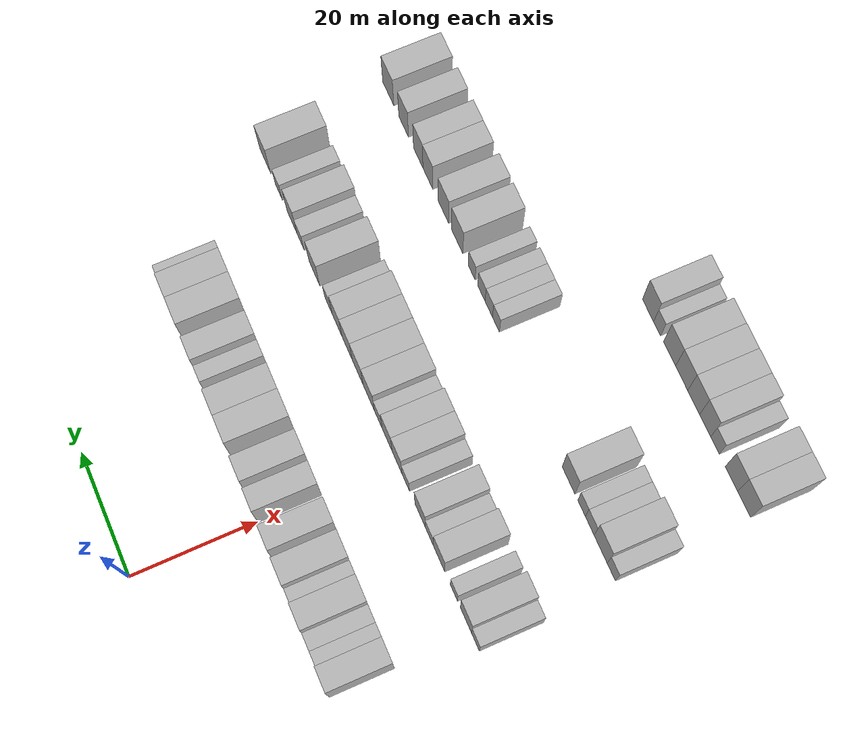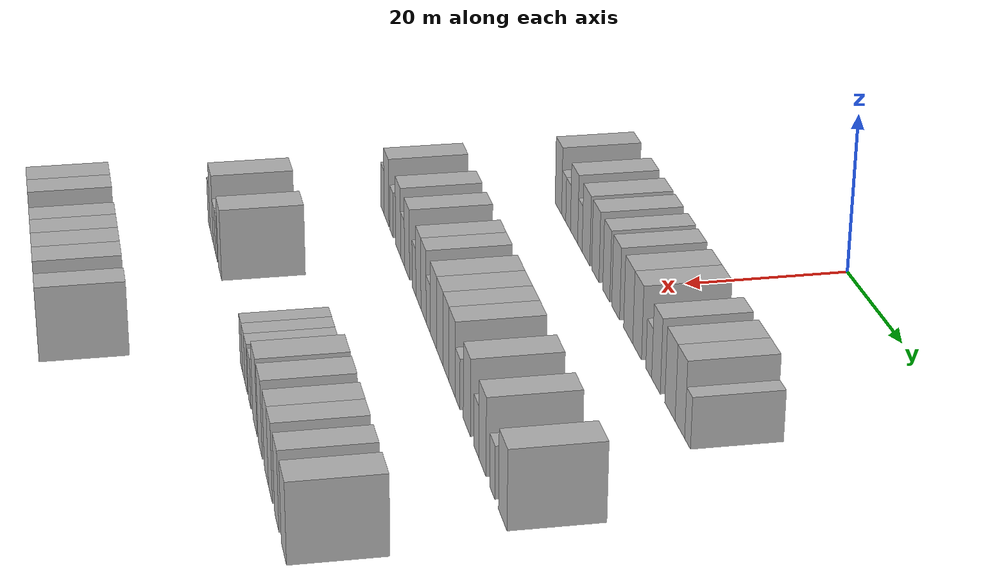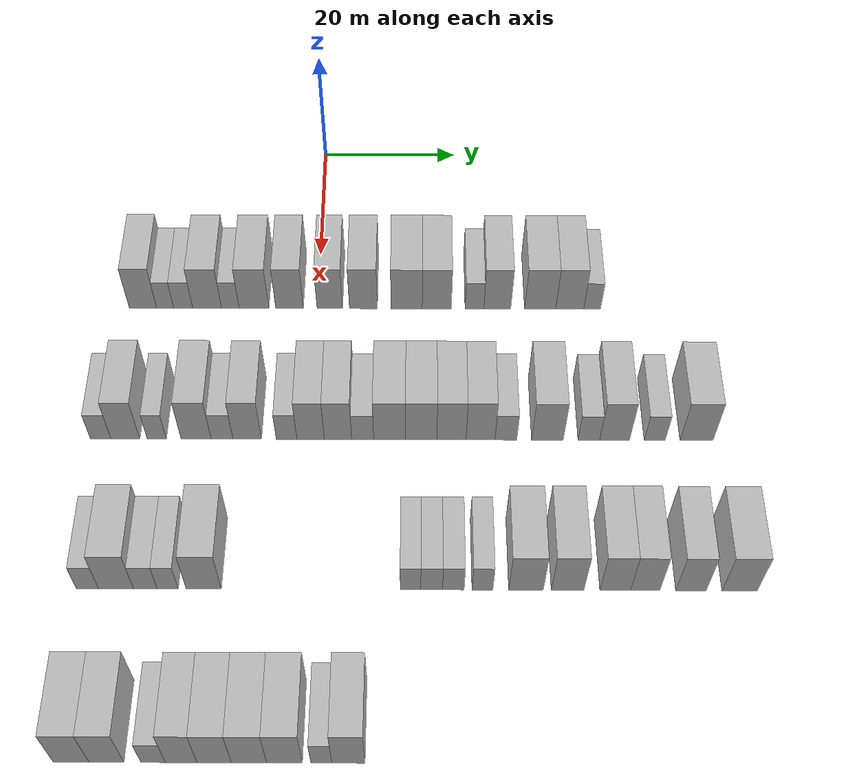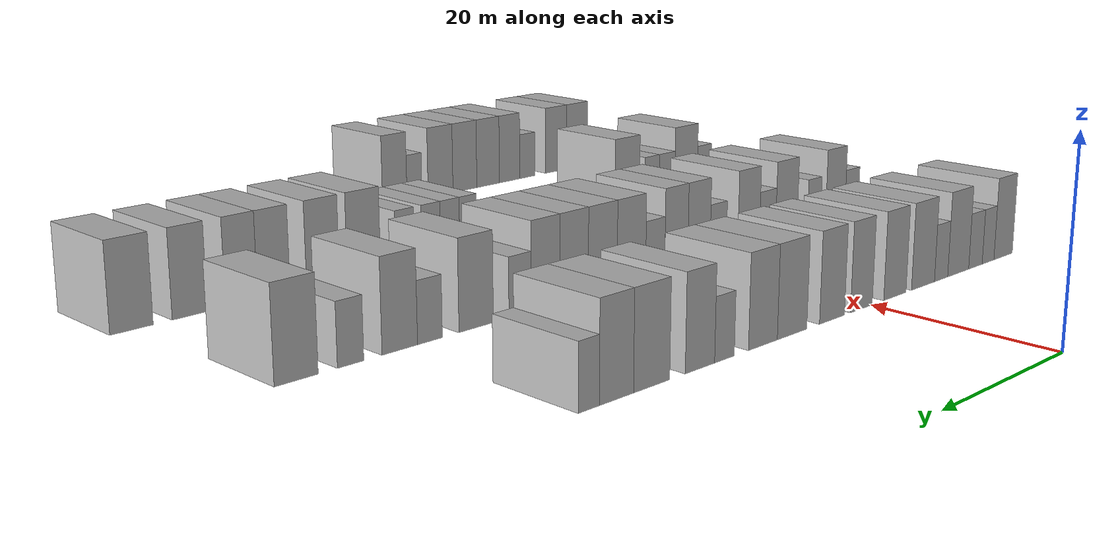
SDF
<sdf version="1.6">
 <world name="default">
  <model name="building_86">
   <static>1</static>
   <pose>25.0000 -25.2728 0 0.000000 0.000000 0.000000</pose>
   <link name="link">
    <pose>0 0 4.50 0 0 0</pose>
    <collision name="collision"><geometry><box><size>10.0000 3.9410 9.0000</size></box></geometry></collision>
    <visual name="visual">
     <cast_shadows>0</cast_shadows>
     <geometry><box><size>10.0000 3.9410 9.0000</size></box></geometry>
     <material>
      <script>
       <uri>model://HANNAS_wall/materials/scripts</uri>
       <uri>model://HANNAS_wall/materials/textures</uri>
       <name>vrc/HANNAS_wall</name>
      </script>
     </material>
    </visual>
   </link>
  </model>
  <model name="building_87">
   <static>1</static>
   <pose>25.0000 -22.0750 0 0.000000 0.000000 0.000000</pose>
   <link name="link">
    <pose>0 0 3.00 0 0 0</pose>
    <collision name="collision"><geometry><box><size>10.0000 2.4546 6.0000</size></box></geometry></collision>
    <visual name="visual">
     <cast_shadows>0</cast_shadows>
     <geometry><box><size>10.0000 2.4546 6.0000</size></box></geometry>
     <material>
      <script>
       <uri>model://HANNAS_wall/materials/scripts</uri>
       <uri>model://HANNAS_wall/materials/textures</uri>
       <name>vrc/HANNAS_wall</name>
      </script>
     </material>
    </visual>
   </link>
  </model>
  <model name="building_88">
   <static>1</static>
   <pose>25.0000 -19.4703 0 0.000000 0.000000 0.000000</pose>
   <link name="link">
    <pose>0 0 3.00 0 0 0</pose>
    <collision name="collision"><geometry><box><size>10.0000 2.7548 6.0000</size></box></geometry></collision>
    <visual name="visual">
     <cast_shadows>0</cast_shadows>
     <geometry><box><size>10.0000 2.7548 6.0000</size></box></geometry>
     <material>
      <script>
       <uri>model://HANNAS_wall/materials/scripts</uri>
       <uri>model://HANNAS_wall/materials/textures</uri>
       <name>vrc/HANNAS_wall</name>
      </script>
     </material>
    </visual>
   </link>
  </model>
  <model name="building_89">
   <static>1</static>
   <pose>25.0000 -16.0093 0 0.000000 0.000000 0.000000</pose>
   <link name="link">
    <pose>0 0 4.50 0 0 0</pose>
    <collision name="collision"><geometry><box><size>10.0000 4.1673 9.0000</size></box></geometry></collision>
    <visual name="visual">
     <cast_shadows>0</cast_shadows>
     <geometry><box><size>10.0000 4.1673 9.0000</size></box></geometry>
     <material>
      <script>
       <uri>model://HANNAS_wall/materials/scripts</uri>
       <uri>model://HANNAS_wall/materials/textures</uri>
       <name>vrc/HANNAS_wall</name>
      </script>
     </material>
    </visual>
   </link>
  </model>
  <model name="building_90">
   <static>1</static>
   <pose>25.0000 -12.6539 0 0.000000 0.000000 0.000000</pose>
   <link name="link">
    <pose>0 0 3.00 0 0 0</pose>
    <collision name="collision"><geometry><box><size>10.0000 2.5434 6.0000</size></box></geometry></collision>
    <visual name="visual">
     <cast_shadows>0</cast_shadows>
     <geometry><box><size>10.0000 2.5434 6.0000</size></box></geometry>
     <material>
      <script>
       <uri>model://HANNAS_wall/materials/scripts</uri>
       <uri>model://HANNAS_wall/materials/textures</uri>
       <name>vrc/HANNAS_wall</name>
      </script>
     </material>
    </visual>
   </link>
  </model>
  <model name="building_91">
   <static>1</static>
   <pose>25.0000 -9.2361 0 0.000000 0.000000 0.000000</pose>
   <link name="link">
    <pose>0 0 4.50 0 0 0</pose>
    <collision name="collision"><geometry><box><size>10.0000 4.2923 9.0000</size></box></geometry></collision>
    <visual name="visual">
     <cast_shadows>0</cast_shadows>
     <geometry><box><size>10.0000 4.2923 9.0000</size></box></geometry>
     <material>
      <script>
       <uri>model://HANNAS_wall/materials/scripts</uri>
       <uri>model://HANNAS_wall/materials/textures</uri>
       <name>vrc/HANNAS_wall</name>
      </script>
     </material>
    </visual>
   </link>
  </model>
  <model name="building_92">
   <static>1</static>
   <pose>25.0000 -4.1065 0 0.000000 0.000000 0.000000</pose>
   <link name="link">
    <pose>0 0 4.50 0 0 0</pose>
    <collision name="collision"><geometry><box><size>10.0000 3.9671 9.0000</size></box></geometry></collision>
    <visual name="visual">
     <cast_shadows>0</cast_shadows>
     <geometry><box><size>10.0000 3.9671 9.0000</size></box></geometry>
     <material>
      <script>
       <uri>model://HANNAS_wall/materials/scripts</uri>
       <uri>model://HANNAS_wall/materials/textures</uri>
       <name>vrc/HANNAS_wall</name>
      </script>
     </material>
    </visual>
   </link>
  </model>
  <model name="building_93">
   <static>1</static>
   <pose>25.0000 1.7117 0 0.000000 0.000000 0.000000</pose>
   <link name="link">
    <pose>0 0 4.50 0 0 0</pose>
    <collision name="collision"><geometry><box><size>10.0000 3.6692 9.0000</size></box></geometry></collision>
    <visual name="visual">
     <cast_shadows>0</cast_shadows>
     <geometry><box><size>10.0000 3.6692 9.0000</size></box></geometry>
     <material>
      <script>
       <uri>model://HANNAS_wall/materials/scripts</uri>
       <uri>model://HANNAS_wall/materials/textures</uri>
       <name>vrc/HANNAS_wall</name>
      </script>
     </material>
    </visual>
   </link>
  </model>
  <model name="building_94">
   <static>1</static>
   <pose>25.0000 6.5533 0 0.000000 0.000000 0.000000</pose>
   <link name="link">
    <pose>0 0 4.50 0 0 0</pose>
    <collision name="collision"><geometry><box><size>10.0000 4.0141 9.0000</size></box></geometry></collision>
    <visual name="visual">
     <cast_shadows>0</cast_shadows>
     <geometry><box><size>10.0000 4.0141 9.0000</size></box></geometry>
     <material>
      <script>
       <uri>model://HANNAS_wall/materials/scripts</uri>
       <uri>model://HANNAS_wall/materials/textures</uri>
       <name>vrc/HANNAS_wall</name>
      </script>
     </material>
    </visual>
   </link>
  </model>
  <model name="building_95">
   <static>1</static>
   <pose>25.0000 12.7944 0 0.000000 0.000000 0.000000</pose>
   <link name="link">
    <pose>0 0 4.50 0 0 0</pose>
    <collision name="collision"><geometry><box><size>10.0000 4.4681 9.0000</size></box></geometry></collision>
    <visual name="visual">
     <cast_shadows>0</cast_shadows>
     <geometry><box><size>10.0000 4.4681 9.0000</size></box></geometry>
     <material>
      <script>
       <uri>model://HANNAS_wall/materials/scripts</uri>
       <uri>model://HANNAS_wall/materials/textures</uri>
       <name>vrc/HANNAS_wall</name>
      </script>
     </material>
    </visual>
   </link>
  </model>
  <model name="building_96">
   <static>1</static>
   <pose>25.0000 17.1203 0 0.000000 0.000000 0.000000</pose>
   <link name="link">
    <pose>0 0 4.50 0 0 0</pose>
    <collision name="collision"><geometry><box><size>10.0000 4.1838 9.0000</size></box></geometry></collision>
    <visual name="visual">
     <cast_shadows>0</cast_shadows>
     <geometry><box><size>10.0000 4.1838 9.0000</size></box></geometry>
     <material>
      <script>
       <uri>model://HANNAS_wall/materials/scripts</uri>
       <uri>model://HANNAS_wall/materials/textures</uri>
       <name>vrc/HANNAS_wall</name>
      </script>
     </material>
    </visual>
   </link>
  </model>
  <model name="building_97">
   <static>1</static>
   <pose>25.0000 22.5621 0 0.000000 0.000000 0.000000</pose>
   <link name="link">
    <pose>0 0 3.00 0 0 0</pose>
    <collision name="collision"><geometry><box><size>10.0000 2.6999 6.0000</size></box></geometry></collision>
    <visual name="visual">
     <cast_shadows>0</cast_shadows>
     <geometry><box><size>10.0000 2.6999 6.0000</size></box></geometry>
     <material>
      <script>
       <uri>model://HANNAS_wall/materials/scripts</uri>
       <uri>model://HANNAS_wall/materials/textures</uri>
       <name>vrc/HANNAS_wall</name>
      </script>
     </material>
    </visual>
   </link>
  </model>
  <model name="building_98">
   <static>1</static>
   <pose>25.0000 25.8554 0 0.000000 0.000000 0.000000</pose>
   <link name="link">
    <pose>0 0 4.50 0 0 0</pose>
    <collision name="collision"><geometry><box><size>10.0000 3.8867 9.0000</size></box></geometry></collision>
    <visual name="visual">
     <cast_shadows>0</cast_shadows>
     <geometry><box><size>10.0000 3.8867 9.0000</size></box></geometry>
     <material>
      <script>
       <uri>model://HANNAS_wall/materials/scripts</uri>
       <uri>model://HANNAS_wall/materials/textures</uri>
       <name>vrc/HANNAS_wall</name>
      </script>
     </material>
    </visual>
   </link>
  </model>
  <model name="building_99">
   <static>1</static>
   <pose>25.0000 32.0392 0 0.000000 0.000000 0.000000</pose>
   <link name="link">
    <pose>0 0 4.50 0 0 0</pose>
    <collision name="collision"><geometry><box><size>10.0000 4.4809 9.0000</size></box></geometry></collision>
    <visual name="visual">
     <cast_shadows>0</cast_shadows>
     <geometry><box><size>10.0000 4.4809 9.0000</size></box></geometry>
     <material>
      <script>
       <uri>model://HANNAS_wall/materials/scripts</uri>
       <uri>model://HANNAS_wall/materials/textures</uri>
       <name>vrc/HANNAS_wall</name>
      </script>
     </material>
    </visual>
   </link>
  </model>
  <model name="building_100">
   <static>1</static>
   <pose>25.0000 36.2983 0 0.000000 0.000000 0.000000</pose>
   <link name="link">
    <pose>0 0 4.50 0 0 0</pose>
    <collision name="collision"><geometry><box><size>10.0000 4.0374 9.0000</size></box></geometry></collision>
    <visual name="visual">
     <cast_shadows>0</cast_shadows>
     <geometry><box><size>10.0000 4.0374 9.0000</size></box></geometry>
     <material>
      <script>
       <uri>model://HANNAS_wall/materials/scripts</uri>
       <uri>model://HANNAS_wall/materials/textures</uri>
       <name>vrc/HANNAS_wall</name>
      </script>
     </material>
    </visual>
   </link>
  </model>
  <model name="building_101">
   <static>1</static>
   <pose>25.0000 39.5239 0 0.000000 0.000000 0.000000</pose>
   <link name="link">
    <pose>0 0 3.00 0 0 0</pose>
    <collision name="collision"><geometry><box><size>10.0000 2.4137 6.0000</size></box></geometry></collision>
    <visual name="visual">
     <cast_shadows>0</cast_shadows>
     <geometry><box><size>10.0000 2.4137 6.0000</size></box></geometry>
     <material>
      <script>
       <uri>model://HANNAS_wall/materials/scripts</uri>
       <uri>model://HANNAS_wall/materials/textures</uri>
       <name>vrc/HANNAS_wall</name>
      </script>
     </material>
    </visual>
   </link>
  </model>
  <model name="building_266">
   <static>1</static>
   <pose>47.0000 -28.4433 0 0.000000 0.000000 0.000000</pose>
   <link name="link">
    <pose>0 0 3.00 0 0 0</pose>
    <collision name="collision"><geometry><box><size>10.0000 2.7791 6.0000</size></box></geometry></collision>
    <visual name="visual">
     <cast_shadows>0</cast_shadows>
     <geometry><box><size>10.0000 2.7791 6.0000</size></box></geometry>
     <material>
      <script>
       <uri>model://HANNAS_wall/materials/scripts</uri>
       <uri>model://HANNAS_wall/materials/textures</uri>
       <name>vrc/HANNAS_wall</name>
      </script>
     </material>
    </visual>
   </link>
  </model>
  <model name="building_267">
   <static>1</static>
   <pose>47.0000 -25.0952 0 0.000000 0.000000 0.000000</pose>
   <link name="link">
    <pose>0 0 4.50 0 0 0</pose>
    <collision name="collision"><geometry><box><size>10.0000 3.9172 9.0000</size></box></geometry></collision>
    <visual name="visual">
     <cast_shadows>0</cast_shadows>
     <geometry><box><size>10.0000 3.9172 9.0000</size></box></geometry>
     <material>
      <script>
       <uri>model://HANNAS_wall/materials/scripts</uri>
       <uri>model://HANNAS_wall/materials/textures</uri>
       <name>vrc/HANNAS_wall</name>
      </script>
     </material>
    </visual>
   </link>
  </model>
  <model name="building_268">
   <static>1</static>
   <pose>47.0000 -20.8453 0 0.000000 0.000000 0.000000</pose>
   <link name="link">
    <pose>0 0 3.00 0 0 0</pose>
    <collision name="collision"><geometry><box><size>10.0000 2.5826 6.0000</size></box></geometry></collision>
    <visual name="visual">
     <cast_shadows>0</cast_shadows>
     <geometry><box><size>10.0000 2.5826 6.0000</size></box></geometry>
     <material>
      <script>
       <uri>model://HANNAS_wall/materials/scripts</uri>
       <uri>model://HANNAS_wall/materials/textures</uri>
       <name>vrc/HANNAS_wall</name>
      </script>
     </material>
    </visual>
   </link>
  </model>
  <model name="building_269">
   <static>1</static>
   <pose>47.0000 -15.5282 0 0.000000 0.000000 0.000000</pose>
   <link name="link">
    <pose>0 0 4.50 0 0 0</pose>
    <collision name="collision"><geometry><box><size>10.0000 4.0515 9.0000</size></box></geometry></collision>
    <visual name="visual">
     <cast_shadows>0</cast_shadows>
     <geometry><box><size>10.0000 4.0515 9.0000</size></box></geometry>
     <material>
      <script>
       <uri>model://HANNAS_wall/materials/scripts</uri>
       <uri>model://HANNAS_wall/materials/textures</uri>
       <name>vrc/HANNAS_wall</name>
      </script>
     </material>
    </visual>
   </link>
  </model>
  <model name="building_270">
   <static>1</static>
   <pose>47.0000 -12.0247 0 0.000000 0.000000 0.000000</pose>
   <link name="link">
    <pose>0 0 3.00 0 0 0</pose>
    <collision name="collision"><geometry><box><size>10.0000 2.9556 6.0000</size></box></geometry></collision>
    <visual name="visual">
     <cast_shadows>0</cast_shadows>
     <geometry><box><size>10.0000 2.9556 6.0000</size></box></geometry>
     <material>
      <script>
       <uri>model://HANNAS_wall/materials/scripts</uri>
       <uri>model://HANNAS_wall/materials/textures</uri>
       <name>vrc/HANNAS_wall</name>
      </script>
     </material>
    </visual>
   </link>
  </model>
  <model name="building_271">
   <static>1</static>
   <pose>47.0000 -8.6190 0 0.000000 0.000000 0.000000</pose>
   <link name="link">
    <pose>0 0 4.50 0 0 0</pose>
    <collision name="collision"><geometry><box><size>10.0000 3.8558 9.0000</size></box></geometry></collision>
    <visual name="visual">
     <cast_shadows>0</cast_shadows>
     <geometry><box><size>10.0000 3.8558 9.0000</size></box></geometry>
     <material>
      <script>
       <uri>model://HANNAS_wall/materials/scripts</uri>
       <uri>model://HANNAS_wall/materials/textures</uri>
       <name>vrc/HANNAS_wall</name>
      </script>
     </material>
    </visual>
   </link>
  </model>
  <model name="building_272">
   <static>1</static>
   <pose>47.0000 -3.2991 0 0.000000 0.000000 0.000000</pose>
   <link name="link">
    <pose>0 0 3.00 0 0 0</pose>
    <collision name="collision"><geometry><box><size>10.0000 2.7840 6.0000</size></box></geometry></collision>
    <visual name="visual">
     <cast_shadows>0</cast_shadows>
     <geometry><box><size>10.0000 2.7840 6.0000</size></box></geometry>
     <material>
      <script>
       <uri>model://HANNAS_wall/materials/scripts</uri>
       <uri>model://HANNAS_wall/materials/textures</uri>
       <name>vrc/HANNAS_wall</name>
      </script>
     </material>
    </visual>
   </link>
  </model>
  <model name="building_273">
   <static>1</static>
   <pose>47.0000 -0.0549 0 0.000000 0.000000 0.000000</pose>
   <link name="link">
    <pose>0 0 4.50 0 0 0</pose>
    <collision name="collision"><geometry><box><size>10.0000 3.7044 9.0000</size></box></geometry></collision>
    <visual name="visual">
     <cast_shadows>0</cast_shadows>
     <geometry><box><size>10.0000 3.7044 9.0000</size></box></geometry>
     <material>
      <script>
       <uri>model://HANNAS_wall/materials/scripts</uri>
       <uri>model://HANNAS_wall/materials/textures</uri>
       <name>vrc/HANNAS_wall</name>
      </script>
     </material>
    </visual>
   </link>
  </model>
  <model name="building_274">
   <static>1</static>
   <pose>47.0000 3.6464 0 0.000000 0.000000 0.000000</pose>
   <link name="link">
    <pose>0 0 4.50 0 0 0</pose>
    <collision name="collision"><geometry><box><size>10.0000 3.6980 9.0000</size></box></geometry></collision>
    <visual name="visual">
     <cast_shadows>0</cast_shadows>
     <geometry><box><size>10.0000 3.6980 9.0000</size></box></geometry>
     <material>
      <script>
       <uri>model://HANNAS_wall/materials/scripts</uri>
       <uri>model://HANNAS_wall/materials/textures</uri>
       <name>vrc/HANNAS_wall</name>
      </script>
     </material>
    </visual>
   </link>
  </model>
  <model name="building_275">
   <static>1</static>
   <pose>47.0000 6.9834 0 0.000000 0.000000 0.000000</pose>
   <link name="link">
    <pose>0 0 3.00 0 0 0</pose>
    <collision name="collision"><geometry><box><size>10.0000 2.9760 6.0000</size></box></geometry></collision>
    <visual name="visual">
     <cast_shadows>0</cast_shadows>
     <geometry><box><size>10.0000 2.9760 6.0000</size></box></geometry>
     <material>
      <script>
       <uri>model://HANNAS_wall/materials/scripts</uri>
       <uri>model://HANNAS_wall/materials/textures</uri>
       <name>vrc/HANNAS_wall</name>
      </script>
     </material>
    </visual>
   </link>
  </model>
  <model name="building_276">
   <static>1</static>
   <pose>47.0000 10.6266 0 0.000000 0.000000 0.000000</pose>
   <link name="link">
    <pose>0 0 4.50 0 0 0</pose>
    <collision name="collision"><geometry><box><size>10.0000 4.3105 9.0000</size></box></geometry></collision>
    <visual name="visual">
     <cast_shadows>0</cast_shadows>
     <geometry><box><size>10.0000 4.3105 9.0000</size></box></geometry>
     <material>
      <script>
       <uri>model://HANNAS_wall/materials/scripts</uri>
       <uri>model://HANNAS_wall/materials/textures</uri>
       <name>vrc/HANNAS_wall</name>
      </script>
     </material>
    </visual>
   </link>
  </model>
  <model name="building_277">
   <static>1</static>
   <pose>47.0000 14.8785 0 0.000000 0.000000 0.000000</pose>
   <link name="link">
    <pose>0 0 4.50 0 0 0</pose>
    <collision name="collision"><geometry><box><size>10.0000 4.1932 9.0000</size></box></geometry></collision>
    <visual name="visual">
     <cast_shadows>0</cast_shadows>
     <geometry><box><size>10.0000 4.1932 9.0000</size></box></geometry>
     <material>
      <script>
       <uri>model://HANNAS_wall/materials/scripts</uri>
       <uri>model://HANNAS_wall/materials/textures</uri>
       <name>vrc/HANNAS_wall</name>
      </script>
     </material>
    </visual>
   </link>
  </model>
  <model name="building_278">
   <static>1</static>
   <pose>47.0000 18.9514 0 0.000000 0.000000 0.000000</pose>
   <link name="link">
    <pose>0 0 4.50 0 0 0</pose>
    <collision name="collision"><geometry><box><size>10.0000 3.9525 9.0000</size></box></geometry></collision>
    <visual name="visual">
     <cast_shadows>0</cast_shadows>
     <geometry><box><size>10.0000 3.9525 9.0000</size></box></geometry>
     <material>
      <script>
       <uri>model://HANNAS_wall/materials/scripts</uri>
       <uri>model://HANNAS_wall/materials/textures</uri>
       <name>vrc/HANNAS_wall</name>
      </script>
     </material>
    </visual>
   </link>
  </model>
  <model name="building_279">
   <static>1</static>
   <pose>47.0000 22.8835 0 0.000000 0.000000 0.000000</pose>
   <link name="link">
    <pose>0 0 4.50 0 0 0</pose>
    <collision name="collision"><geometry><box><size>10.0000 3.9116 9.0000</size></box></geometry></collision>
    <visual name="visual">
     <cast_shadows>0</cast_shadows>
     <geometry><box><size>10.0000 3.9116 9.0000</size></box></geometry>
     <material>
      <script>
       <uri>model://HANNAS_wall/materials/scripts</uri>
       <uri>model://HANNAS_wall/materials/textures</uri>
       <name>vrc/HANNAS_wall</name>
      </script>
     </material>
    </visual>
   </link>
  </model>
  <model name="building_280">
   <static>1</static>
   <pose>47.0000 26.3109 0 0.000000 0.000000 0.000000</pose>
   <link name="link">
    <pose>0 0 3.00 0 0 0</pose>
    <collision name="collision"><geometry><box><size>10.0000 2.9432 6.0000</size></box></geometry></collision>
    <visual name="visual">
     <cast_shadows>0</cast_shadows>
     <geometry><box><size>10.0000 2.9432 6.0000</size></box></geometry>
     <material>
      <script>
       <uri>model://HANNAS_wall/materials/scripts</uri>
       <uri>model://HANNAS_wall/materials/textures</uri>
       <name>vrc/HANNAS_wall</name>
      </script>
     </material>
    </visual>
   </link>
  </model>
  <model name="building_281">
   <static>1</static>
   <pose>47.0000 31.9183 0 0.000000 0.000000 0.000000</pose>
   <link name="link">
    <pose>0 0 4.50 0 0 0</pose>
    <collision name="collision"><geometry><box><size>10.0000 4.2717 9.0000</size></box></geometry></collision>
    <visual name="visual">
     <cast_shadows>0</cast_shadows>
     <geometry><box><size>10.0000 4.2717 9.0000</size></box></geometry>
     <material>
      <script>
       <uri>model://HANNAS_wall/materials/scripts</uri>
       <uri>model://HANNAS_wall/materials/textures</uri>
       <name>vrc/HANNAS_wall</name>
      </script>
     </material>
    </visual>
   </link>
  </model>
  <model name="building_282">
   <static>1</static>
   <pose>47.0000 37.5108 0 0.000000 0.000000 0.000000</pose>
   <link name="link">
    <pose>0 0 3.00 0 0 0</pose>
    <collision name="collision"><geometry><box><size>10.0000 2.9134 6.0000</size></box></geometry></collision>
    <visual name="visual">
     <cast_shadows>0</cast_shadows>
     <geometry><box><size>10.0000 2.9134 6.0000</size></box></geometry>
     <material>
      <script>
       <uri>model://HANNAS_wall/materials/scripts</uri>
       <uri>model://HANNAS_wall/materials/textures</uri>
       <name>vrc/HANNAS_wall</name>
      </script>
     </material>
    </visual>
   </link>
  </model>
  <model name="building_283">
   <static>1</static>
   <pose>47.0000 40.9836 0 0.000000 0.000000 0.000000</pose>
   <link name="link">
    <pose>0 0 4.50 0 0 0</pose>
    <collision name="collision"><geometry><box><size>10.0000 4.0322 9.0000</size></box></geometry></collision>
    <visual name="visual">
     <cast_shadows>0</cast_shadows>
     <geometry><box><size>10.0000 4.0322 9.0000</size></box></geometry>
     <material>
      <script>
       <uri>model://HANNAS_wall/materials/scripts</uri>
       <uri>model://HANNAS_wall/materials/textures</uri>
       <name>vrc/HANNAS_wall</name>
      </script>
     </material>
    </visual>
   </link>
  </model>
  <model name="building_284">
   <static>1</static>
   <pose>47.0000 46.4145 0 0.000000 0.000000 0.000000</pose>
   <link name="link">
    <pose>0 0 3.00 0 0 0</pose>
    <collision name="collision"><geometry><box><size>10.0000 2.8296 6.0000</size></box></geometry></collision>
    <visual name="visual">
     <cast_shadows>0</cast_shadows>
     <geometry><box><size>10.0000 2.8296 6.0000</size></box></geometry>
     <material>
      <script>
       <uri>model://HANNAS_wall/materials/scripts</uri>
       <uri>model://HANNAS_wall/materials/textures</uri>
       <name>vrc/HANNAS_wall</name>
      </script>
     </material>
    </visual>
   </link>
  </model>
  <model name="building_285">
   <static>1</static>
   <pose>47.0000 52.0585 0 0.000000 0.000000 0.000000</pose>
   <link name="link">
    <pose>0 0 4.50 0 0 0</pose>
    <collision name="collision"><geometry><box><size>10.0000 4.4586 9.0000</size></box></geometry></collision>
    <visual name="visual">
     <cast_shadows>0</cast_shadows>
     <geometry><box><size>10.0000 4.4586 9.0000</size></box></geometry>
     <material>
      <script>
       <uri>model://HANNAS_wall/materials/scripts</uri>
       <uri>model://HANNAS_wall/materials/textures</uri>
       <name>vrc/HANNAS_wall</name>
      </script>
     </material>
    </visual>
   </link>
  </model>
  <model name="building_457">
   <static>1</static>
   <pose>69.0000 -27.1706 0 0.000000 0.000000 0.000000</pose>
   <link name="link">
    <pose>0 0 3.00 0 0 0</pose>
    <collision name="collision"><geometry><box><size>10.0000 2.7872 6.0000</size></box></geometry></collision>
    <visual name="visual">
     <cast_shadows>0</cast_shadows>
     <geometry><box><size>10.0000 2.7872 6.0000</size></box></geometry>
     <material>
      <script>
       <uri>model://HANNAS_wall/materials/scripts</uri>
       <uri>model://HANNAS_wall/materials/textures</uri>
       <name>vrc/HANNAS_wall</name>
      </script>
     </material>
    </visual>
   </link>
  </model>
  <model name="building_458">
   <static>1</static>
   <pose>69.0000 -23.5649 0 0.000000 0.000000 0.000000</pose>
   <link name="link">
    <pose>0 0 4.50 0 0 0</pose>
    <collision name="collision"><geometry><box><size>10.0000 4.4243 9.0000</size></box></geometry></collision>
    <visual name="visual">
     <cast_shadows>0</cast_shadows>
     <geometry><box><size>10.0000 4.4243 9.0000</size></box></geometry>
     <material>
      <script>
       <uri>model://HANNAS_wall/materials/scripts</uri>
       <uri>model://HANNAS_wall/materials/textures</uri>
       <name>vrc/HANNAS_wall</name>
      </script>
     </material>
    </visual>
   </link>
  </model>
  <model name="building_459">
   <static>1</static>
   <pose>69.0000 -19.8595 0 0.000000 0.000000 0.000000</pose>
   <link name="link">
    <pose>0 0 3.00 0 0 0</pose>
    <collision name="collision"><geometry><box><size>10.0000 2.9865 6.0000</size></box></geometry></collision>
    <visual name="visual">
     <cast_shadows>0</cast_shadows>
     <geometry><box><size>10.0000 2.9865 6.0000</size></box></geometry>
     <material>
      <script>
       <uri>model://HANNAS_wall/materials/scripts</uri>
       <uri>model://HANNAS_wall/materials/textures</uri>
       <name>vrc/HANNAS_wall</name>
      </script>
     </material>
    </visual>
   </link>
  </model>
  <model name="building_460">
   <static>1</static>
   <pose>69.0000 -17.0446 0 0.000000 0.000000 0.000000</pose>
   <link name="link">
    <pose>0 0 3.00 0 0 0</pose>
    <collision name="collision"><geometry><box><size>10.0000 2.6432 6.0000</size></box></geometry></collision>
    <visual name="visual">
     <cast_shadows>0</cast_shadows>
     <geometry><box><size>10.0000 2.6432 6.0000</size></box></geometry>
     <material>
      <script>
       <uri>model://HANNAS_wall/materials/scripts</uri>
       <uri>model://HANNAS_wall/materials/textures</uri>
       <name>vrc/HANNAS_wall</name>
      </script>
     </material>
    </visual>
   </link>
  </model>
  <model name="building_461">
   <static>1</static>
   <pose>69.0000 -12.5145 0 0.000000 0.000000 0.000000</pose>
   <link name="link">
    <pose>0 0 4.50 0 0 0</pose>
    <collision name="collision"><geometry><box><size>10.0000 4.4171 9.0000</size></box></geometry></collision>
    <visual name="visual">
     <cast_shadows>0</cast_shadows>
     <geometry><box><size>10.0000 4.4171 9.0000</size></box></geometry>
     <material>
      <script>
       <uri>model://HANNAS_wall/materials/scripts</uri>
       <uri>model://HANNAS_wall/materials/textures</uri>
       <name>vrc/HANNAS_wall</name>
      </script>
     </material>
    </visual>
   </link>
  </model>
  <model name="building_462">
   <static>1</static>
   <pose>69.0000 13.5328 0 0.000000 0.000000 0.000000</pose>
   <link name="link">
    <pose>0 0 3.00 0 0 0</pose>
    <collision name="collision"><geometry><box><size>10.0000 2.5591 6.0000</size></box></geometry></collision>
    <visual name="visual">
     <cast_shadows>0</cast_shadows>
     <geometry><box><size>10.0000 2.5591 6.0000</size></box></geometry>
     <material>
      <script>
       <uri>model://HANNAS_wall/materials/scripts</uri>
       <uri>model://HANNAS_wall/materials/textures</uri>
       <name>vrc/HANNAS_wall</name>
      </script>
     </material>
    </visual>
   </link>
  </model>
  <model name="building_463">
   <static>1</static>
   <pose>69.0000 16.1828 0 0.000000 0.000000 0.000000</pose>
   <link name="link">
    <pose>0 0 3.00 0 0 0</pose>
    <collision name="collision"><geometry><box><size>10.0000 2.7408 6.0000</size></box></geometry></collision>
    <visual name="visual">
     <cast_shadows>0</cast_shadows>
     <geometry><box><size>10.0000 2.7408 6.0000</size></box></geometry>
     <material>
      <script>
       <uri>model://HANNAS_wall/materials/scripts</uri>
       <uri>model://HANNAS_wall/materials/textures</uri>
       <name>vrc/HANNAS_wall</name>
      </script>
     </material>
    </visual>
   </link>
  </model>
  <model name="building_464">
   <static>1</static>
   <pose>69.0000 18.9079 0 0.000000 0.000000 0.000000</pose>
   <link name="link">
    <pose>0 0 3.00 0 0 0</pose>
    <collision name="collision"><geometry><box><size>10.0000 2.7094 6.0000</size></box></geometry></collision>
    <visual name="visual">
     <cast_shadows>0</cast_shadows>
     <geometry><box><size>10.0000 2.7094 6.0000</size></box></geometry>
     <material>
      <script>
       <uri>model://HANNAS_wall/materials/scripts</uri>
       <uri>model://HANNAS_wall/materials/textures</uri>
       <name>vrc/HANNAS_wall</name>
      </script>
     </material>
    </visual>
   </link>
  </model>
  <model name="building_465">
   <static>1</static>
   <pose>69.0000 22.5750 0 0.000000 0.000000 0.000000</pose>
   <link name="link">
    <pose>0 0 3.00 0 0 0</pose>
    <collision name="collision"><geometry><box><size>10.0000 2.6248 6.0000</size></box></geometry></collision>
    <visual name="visual">
     <cast_shadows>0</cast_shadows>
     <geometry><box><size>10.0000 2.6248 6.0000</size></box></geometry>
     <material>
      <script>
       <uri>model://HANNAS_wall/materials/scripts</uri>
       <uri>model://HANNAS_wall/materials/textures</uri>
       <name>vrc/HANNAS_wall</name>
      </script>
     </material>
    </visual>
   </link>
  </model>
  <model name="building_466">
   <static>1</static>
   <pose>69.0000 28.0635 0 0.000000 0.000000 0.000000</pose>
   <link name="link">
    <pose>0 0 4.50 0 0 0</pose>
    <collision name="collision"><geometry><box><size>10.0000 4.3521 9.0000</size></box></geometry></collision>
    <visual name="visual">
     <cast_shadows>0</cast_shadows>
     <geometry><box><size>10.0000 4.3521 9.0000</size></box></geometry>
     <material>
      <script>
       <uri>model://HANNAS_wall/materials/scripts</uri>
       <uri>model://HANNAS_wall/materials/textures</uri>
       <name>vrc/HANNAS_wall</name>
      </script>
     </material>
    </visual>
   </link>
  </model>
  <model name="building_467">
   <static>1</static>
   <pose>69.0000 33.3014 0 0.000000 0.000000 0.000000</pose>
   <link name="link">
    <pose>0 0 4.50 0 0 0</pose>
    <collision name="collision"><geometry><box><size>10.0000 4.1238 9.0000</size></box></geometry></collision>
    <visual name="visual">
     <cast_shadows>0</cast_shadows>
     <geometry><box><size>10.0000 4.1238 9.0000</size></box></geometry>
     <material>
      <script>
       <uri>model://HANNAS_wall/materials/scripts</uri>
       <uri>model://HANNAS_wall/materials/textures</uri>
       <name>vrc/HANNAS_wall</name>
      </script>
     </material>
    </visual>
   </link>
  </model>
  <model name="building_468">
   <static>1</static>
   <pose>69.0000 39.2917 0 0.000000 0.000000 0.000000</pose>
   <link name="link">
    <pose>0 0 4.50 0 0 0</pose>
    <collision name="collision"><geometry><box><size>10.0000 3.8569 9.0000</size></box></geometry></collision>
    <visual name="visual">
     <cast_shadows>0</cast_shadows>
     <geometry><box><size>10.0000 3.8569 9.0000</size></box></geometry>
     <material>
      <script>
       <uri>model://HANNAS_wall/materials/scripts</uri>
       <uri>model://HANNAS_wall/materials/textures</uri>
       <name>vrc/HANNAS_wall</name>
      </script>
     </material>
    </visual>
   </link>
  </model>
  <model name="building_469">
   <static>1</static>
   <pose>69.0000 43.0633 0 0.000000 0.000000 0.000000</pose>
   <link name="link">
    <pose>0 0 4.50 0 0 0</pose>
    <collision name="collision"><geometry><box><size>10.0000 3.6863 9.0000</size></box></geometry></collision>
    <visual name="visual">
     <cast_shadows>0</cast_shadows>
     <geometry><box><size>10.0000 3.6863 9.0000</size></box></geometry>
     <material>
      <script>
       <uri>model://HANNAS_wall/materials/scripts</uri>
       <uri>model://HANNAS_wall/materials/textures</uri>
       <name>vrc/HANNAS_wall</name>
      </script>
     </material>
    </visual>
   </link>
  </model>
  <model name="building_470">
   <static>1</static>
   <pose>69.0000 48.8218 0 0.000000 0.000000 0.000000</pose>
   <link name="link">
    <pose>0 0 4.50 0 0 0</pose>
    <collision name="collision"><geometry><box><size>10.0000 3.8307 9.0000</size></box></geometry></collision>
    <visual name="visual">
     <cast_shadows>0</cast_shadows>
     <geometry><box><size>10.0000 3.8307 9.0000</size></box></geometry>
     <material>
      <script>
       <uri>model://HANNAS_wall/materials/scripts</uri>
       <uri>model://HANNAS_wall/materials/textures</uri>
       <name>vrc/HANNAS_wall</name>
      </script>
     </material>
    </visual>
   </link>
  </model>
  <model name="building_471">
   <static>1</static>
   <pose>69.0000 54.9603 0 0.000000 0.000000 0.000000</pose>
   <link name="link">
    <pose>0 0 4.50 0 0 0</pose>
    <collision name="collision"><geometry><box><size>10.0000 4.4464 9.0000</size></box></geometry></collision>
    <visual name="visual">
     <cast_shadows>0</cast_shadows>
     <geometry><box><size>10.0000 4.4464 9.0000</size></box></geometry>
     <material>
      <script>
       <uri>model://HANNAS_wall/materials/scripts</uri>
       <uri>model://HANNAS_wall/materials/textures</uri>
       <name>vrc/HANNAS_wall</name>
      </script>
     </material>
    </visual>
   </link>
  </model>
  <model name="building_637">
   <static>1</static>
   <pose>91.0000 -26.0014 0 0.000000 0.000000 0.000000</pose>
   <link name="link">
    <pose>0 0 4.50 0 0 0</pose>
    <collision name="collision"><geometry><box><size>10.0000 4.1807 9.0000</size></box></geometry></collision>
    <visual name="visual">
     <cast_shadows>0</cast_shadows>
     <geometry><box><size>10.0000 4.1807 9.0000</size></box></geometry>
     <material>
      <script>
       <uri>model://HANNAS_wall/materials/scripts</uri>
       <uri>model://HANNAS_wall/materials/textures</uri>
       <name>vrc/HANNAS_wall</name>
      </script>
     </material>
    </visual>
   </link>
  </model>
  <model name="building_638">
   <static>1</static>
   <pose>91.0000 -21.8785 0 0.000000 0.000000 0.000000</pose>
   <link name="link">
    <pose>0 0 4.50 0 0 0</pose>
    <collision name="collision"><geometry><box><size>10.0000 4.0651 9.0000</size></box></geometry></collision>
    <visual name="visual">
     <cast_shadows>0</cast_shadows>
     <geometry><box><size>10.0000 4.0651 9.0000</size></box></geometry>
     <material>
      <script>
       <uri>model://HANNAS_wall/materials/scripts</uri>
       <uri>model://HANNAS_wall/materials/textures</uri>
       <name>vrc/HANNAS_wall</name>
      </script>
     </material>
    </visual>
   </link>
  </model>
  <model name="building_639">
   <static>1</static>
   <pose>91.0000 -16.4216 0 0.000000 0.000000 0.000000</pose>
   <link name="link">
    <pose>0 0 3.00 0 0 0</pose>
    <collision name="collision"><geometry><box><size>10.0000 2.8486 6.0000</size></box></geometry></collision>
    <visual name="visual">
     <cast_shadows>0</cast_shadows>
     <geometry><box><size>10.0000 2.8486 6.0000</size></box></geometry>
     <material>
      <script>
       <uri>model://HANNAS_wall/materials/scripts</uri>
       <uri>model://HANNAS_wall/materials/textures</uri>
       <name>vrc/HANNAS_wall</name>
      </script>
     </material>
    </visual>
   </link>
  </model>
  <model name="building_640">
   <static>1</static>
   <pose>91.0000 -13.1471 0 0.000000 0.000000 0.000000</pose>
   <link name="link">
    <pose>0 0 4.50 0 0 0</pose>
    <collision name="collision"><geometry><box><size>10.0000 3.7005 9.0000</size></box></geometry></collision>
    <visual name="visual">
     <cast_shadows>0</cast_shadows>
     <geometry><box><size>10.0000 3.7005 9.0000</size></box></geometry>
     <material>
      <script>
       <uri>model://HANNAS_wall/materials/scripts</uri>
       <uri>model://HANNAS_wall/materials/textures</uri>
       <name>vrc/HANNAS_wall</name>
      </script>
     </material>
    </visual>
   </link>
  </model>
  <model name="building_641">
   <static>1</static>
   <pose>91.0000 -9.2878 0 0.000000 0.000000 0.000000</pose>
   <link name="link">
    <pose>0 0 4.50 0 0 0</pose>
    <collision name="collision"><geometry><box><size>10.0000 4.0180 9.0000</size></box></geometry></collision>
    <visual name="visual">
     <cast_shadows>0</cast_shadows>
     <geometry><box><size>10.0000 4.0180 9.0000</size></box></geometry>
     <material>
      <script>
       <uri>model://HANNAS_wall/materials/scripts</uri>
       <uri>model://HANNAS_wall/materials/textures</uri>
       <name>vrc/HANNAS_wall</name>
      </script>
     </material>
    </visual>
   </link>
  </model>
  <model name="building_642">
   <static>1</static>
   <pose>91.0000 -5.2206 0 0.000000 0.000000 0.000000</pose>
   <link name="link">
    <pose>0 0 4.50 0 0 0</pose>
    <collision name="collision"><geometry><box><size>10.0000 4.1164 9.0000</size></box></geometry></collision>
    <visual name="visual">
     <cast_shadows>0</cast_shadows>
     <geometry><box><size>10.0000 4.1164 9.0000</size></box></geometry>
     <material>
      <script>
       <uri>model://HANNAS_wall/materials/scripts</uri>
       <uri>model://HANNAS_wall/materials/textures</uri>
       <name>vrc/HANNAS_wall</name>
      </script>
     </material>
    </visual>
   </link>
  </model>
  <model name="building_643">
   <static>1</static>
   <pose>91.0000 -1.0824 0 0.000000 0.000000 0.000000</pose>
   <link name="link">
    <pose>0 0 4.50 0 0 0</pose>
    <collision name="collision"><geometry><box><size>10.0000 4.1600 9.0000</size></box></geometry></collision>
    <visual name="visual">
     <cast_shadows>0</cast_shadows>
     <geometry><box><size>10.0000 4.1600 9.0000</size></box></geometry>
     <material>
      <script>
       <uri>model://HANNAS_wall/materials/scripts</uri>
       <uri>model://HANNAS_wall/materials/textures</uri>
       <name>vrc/HANNAS_wall</name>
      </script>
     </material>
    </visual>
   </link>
  </model>
  <model name="building_644">
   <static>1</static>
   <pose>91.0000 3.2133 0 0.000000 0.000000 0.000000</pose>
   <link name="link">
    <pose>0 0 3.00 0 0 0</pose>
    <collision name="collision"><geometry><box><size>10.0000 2.4314 6.0000</size></box></geometry></collision>
    <visual name="visual">
     <cast_shadows>0</cast_shadows>
     <geometry><box><size>10.0000 2.4314 6.0000</size></box></geometry>
     <material>
      <script>
       <uri>model://HANNAS_wall/materials/scripts</uri>
       <uri>model://HANNAS_wall/materials/textures</uri>
       <name>vrc/HANNAS_wall</name>
      </script>
     </material>
    </visual>
   </link>
  </model>
  <model name="building_645">
   <static>1</static>
   <pose>91.0000 6.3686 0 0.000000 0.000000 0.000000</pose>
   <link name="link">
    <pose>0 0 4.50 0 0 0</pose>
    <collision name="collision"><geometry><box><size>10.0000 3.8794 9.0000</size></box></geometry></collision>
    <visual name="visual">
     <cast_shadows>0</cast_shadows>
     <geometry><box><size>10.0000 3.8794 9.0000</size></box></geometry>
     <material>
      <script>
       <uri>model://HANNAS_wall/materials/scripts</uri>
       <uri>model://HANNAS_wall/materials/textures</uri>
       <name>vrc/HANNAS_wall</name>
      </script>
     </material>
    </visual>
   </link>
  </model>
 </world>
</sdf>
